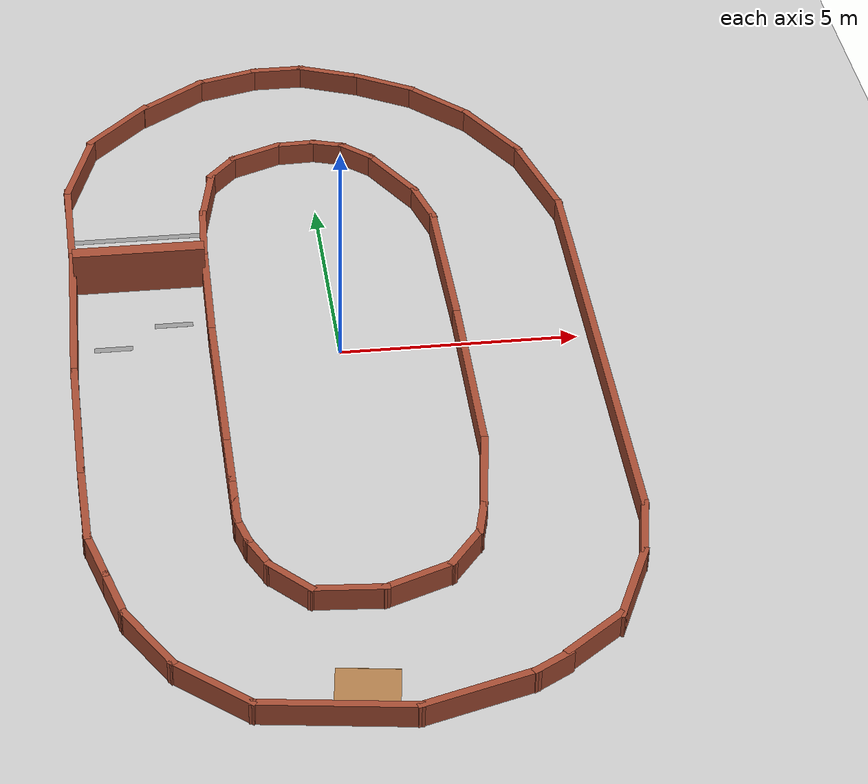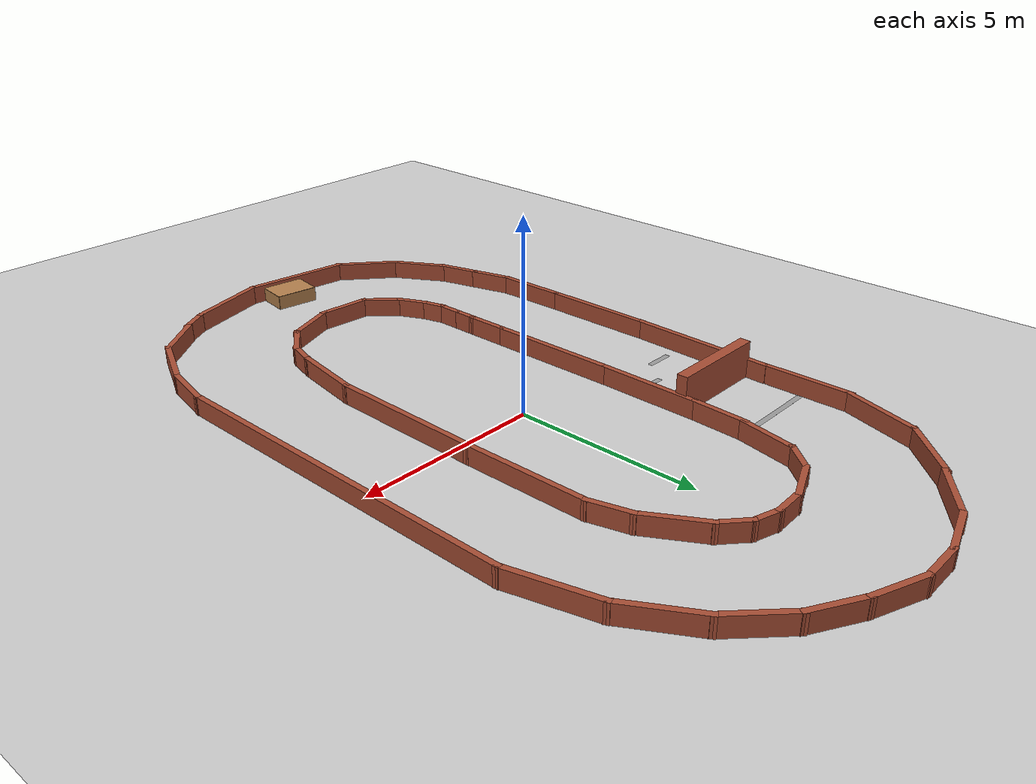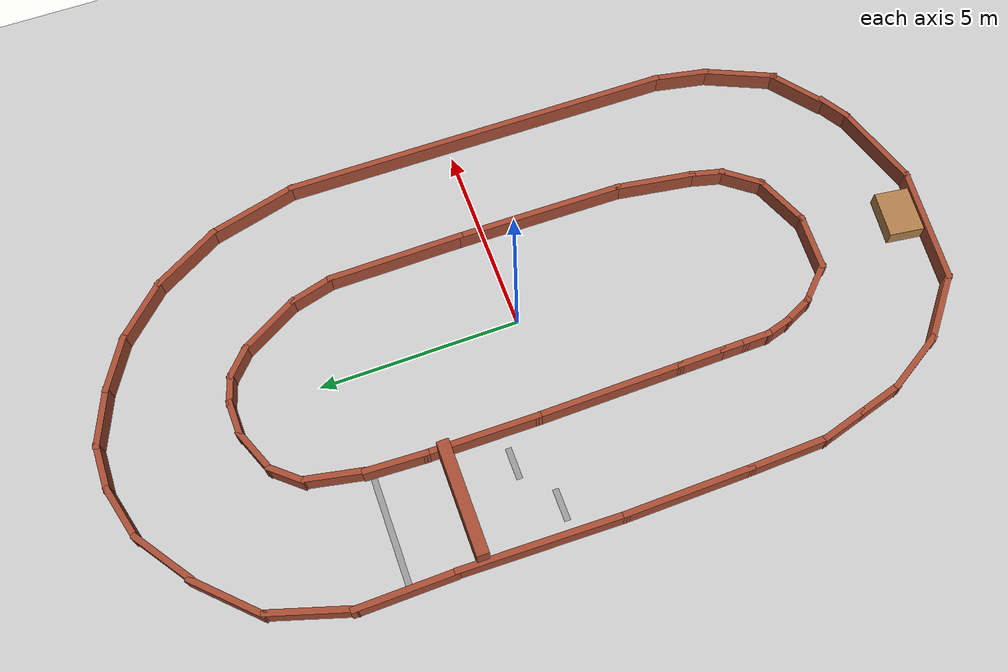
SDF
<sdf version="1.6">
 <world name="default">
  <light name="sun" type="directional">
   <pose>0 0 10 0 -0 0</pose>
   <diffuse>0.8 0.8 0.8 1</diffuse>
   <specular>0.1 0.1 0.1 1</specular>
   <attenuation>
    <range>1000</range>
    <constant>0.9</constant>
    <linear>0.01</linear>
    <quadratic>0.001</quadratic>
   </attenuation>
   <direction>-0.5 0.5 -1</direction>
  </light>
  <model name="ground_plane">
   <static>1</static>
   <link name="link">
    <collision name="collision">
     <geometry><plane><normal>0 0 1</normal><size>30 30</size></plane></geometry>
     <surface><friction><ode><mu>100</mu><mu2>50</mu2></ode></friction></surface>
    </collision>
    <visual name="visual">
     <cast_shadows>0</cast_shadows>
     <geometry><plane><normal>0 0 1</normal><size>30 30</size></plane></geometry>
     <material>
      <script><uri>file://media/materials/scripts/gazebo.material</uri><name>Gazebo/Grey</name></script>
     </material>
    </visual>
   </link>
  </model>
  <gravity>0 0 -9.8</gravity>
  <magnetic_field>6e-06 2.3e-05 -4.2e-05</magnetic_field>
  <atmosphere type="adiabatic"/>
  <physics name="default_physics" default="0" type="ode">
   <max_step_size>0.01</max_step_size>
   <real_time_factor>1</real_time_factor>
   <real_time_update_rate>100</real_time_update_rate>
  </physics>
  <scene><ambient>0.4 0.4 0.4 1</ambient><background>0.7 0.7 0.7 1</background><shadows>1</shadows></scene>
  <spherical_coordinates>
   <surface_model>EARTH_WGS84</surface_model>
   <latitude_deg>0</latitude_deg>
   <longitude_deg>0</longitude_deg>
   <elevation>0</elevation>
   <heading_deg>0</heading_deg>
  </spherical_coordinates>
  <model name="Race_0">
   <pose>-0.195409 -0.189137 0 0 -0 1.84066</pose>
   <link name="Wall_100">
    <collision name="Wall_100_Collision">
     <geometry><box><size>3.75 0.15 0.5</size></box></geometry>
     <pose>0 0 0.25 0 -0 0</pose>
    </collision>
    <visual name="Wall_100_Visual">
     <pose>0 0 0.25 0 -0 0</pose>
     <geometry><box><size>3.75 0.15 0.5</size></box></geometry>
     <material>
      <script><uri>file://media/materials/scripts/gazebo.material</uri><name>Gazebo/Bricks</name></script>
      <ambient>1 1 1 1</ambient>
     </material>
    </visual>
    <pose>-0.488069 2.63903 0 0 -0 2.8797</pose>
   </link>
   <link name="Wall_101">
    <collision name="Wall_101_Collision">
     <geometry><box><size>1.25 0.15 0.5</size></box></geometry>
     <pose>0 0 0.25 0 -0 0</pose>
    </collision>
    <visual name="Wall_101_Visual">
     <pose>0 0 0.25 0 -0 0</pose>
     <geometry><box><size>1.25 0.15 0.5</size></box></geometry>
     <material>
      <script><uri>file://media/materials/scripts/gazebo.material</uri><name>Gazebo/Bricks</name></script>
      <ambient>1 1 1 1</ambient>
     </material>
    </visual>
    <pose>-2.75807 3.24703 0 0 -0 2.88052</pose>
   </link>
   <link name="Wall_102">
    <collision name="Wall_102_Collision">
     <geometry><box><size>0.75 0.15 0.5</size></box></geometry>
     <pose>0 0 0.25 0 -0 0</pose>
    </collision>
    <visual name="Wall_102_Visual">
     <pose>0 0 0.25 0 -0 0</pose>
     <geometry><box><size>0.75 0.15 0.5</size></box></geometry>
     <material>
      <script><uri>file://media/materials/scripts/gazebo.material</uri><name>Gazebo/Bricks</name></script>
      <ambient>1 1 1 1</ambient>
     </material>
    </visual>
    <pose>-3.57907 3.46703 0 0 -0 2.87841</pose>
   </link>
   <link name="Wall_103">
    <collision name="Wall_103_Collision">
     <geometry><box><size>0.75 0.15 0.5</size></box></geometry>
     <pose>0 0 0.25 0 -0 0</pose>
    </collision>
    <visual name="Wall_103_Visual">
     <pose>0 0 0.25 0 -0 0</pose>
     <geometry><box><size>0.75 0.15 0.5</size></box></geometry>
     <material>
      <script><uri>file://media/materials/scripts/gazebo.material</uri><name>Gazebo/Bricks</name></script>
      <ambient>1 1 1 1</ambient>
     </material>
    </visual>
    <pose>-4.15857 3.62253 0 0 -0 2.88045</pose>
   </link>
   <link name="Wall_104">
    <collision name="Wall_104_Collision">
     <geometry><box><size>0.75 0.15 0.5</size></box></geometry>
     <pose>0 0 0.25 0 -0 0</pose>
    </collision>
    <visual name="Wall_104_Visual">
     <pose>0 0 0.25 0 -0 0</pose>
     <geometry><box><size>0.75 0.15 0.5</size></box></geometry>
     <material>
      <script><uri>file://media/materials/scripts/gazebo.material</uri><name>Gazebo/Bricks</name></script>
      <ambient>1 1 1 1</ambient>
     </material>
    </visual>
    <pose>-4.74857 3.70003 0 0 -0 3.14159</pose>
   </link>
   <link name="Wall_105">
    <collision name="Wall_105_Collision">
     <geometry><box><size>0.91106 0.15 0.5</size></box></geometry>
     <pose>0 0 0.25 0 -0 0</pose>
    </collision>
    <visual name="Wall_105_Visual">
     <pose>0 0 0.25 0 -0 0</pose>
     <geometry><box><size>0.91106 0.15 0.5</size></box></geometry>
     <material>
      <script><uri>file://media/materials/scripts/gazebo.material</uri><name>Gazebo/Bricks</name></script>
      <ambient>1 1 1 1</ambient>
     </material>
    </visual>
    <pose>-5.42357 3.63453 0 0 0 -2.96867</pose>
   </link>
   <link name="Wall_38">
    <collision name="Wall_38_Collision">
     <geometry><box><size>1.25 0.15 0.5</size></box></geometry>
     <pose>0 0 0.25 0 -0 0</pose>
    </collision>
    <visual name="Wall_38_Visual">
     <pose>0 0 0.25 0 -0 0</pose>
     <geometry><box><size>1.25 0.15 0.5</size></box></geometry>
     <material>
      <script><uri>file://media/materials/scripts/gazebo.material</uri><name>Gazebo/Bricks</name></script>
      <ambient>1 1 1 1</ambient>
     </material>
    </visual>
    <pose>10.0479 -2.61447 0 0 -0 1.30885</pose>
   </link>
   <link name="Wall_40">
    <collision name="Wall_40_Collision">
     <geometry><box><size>1.5 0.15 0.5</size></box></geometry>
     <pose>0 0 0.25 0 -0 0</pose>
    </collision>
    <visual name="Wall_40_Visual">
     <pose>0 0 0.25 0 -0 0</pose>
     <geometry><box><size>1.5 0.15 0.5</size></box></geometry>
     <material>
      <script><uri>file://media/materials/scripts/gazebo.material</uri><name>Gazebo/Bricks</name></script>
      <ambient>1 1 1 1</ambient>
     </material>
    </visual>
    <pose>10.1904 -1.40797 0 0 -0 1.5708</pose>
   </link>
   <link name="Wall_41">
    <collision name="Wall_41_Collision">
     <geometry><box><size>1.78576 0.15 0.5</size></box></geometry>
     <pose>0 0 0.25 0 -0 0</pose>
    </collision>
    <visual name="Wall_41_Visual">
     <pose>0 0 0.25 0 -0 0</pose>
     <geometry><box><size>1.78576 0.15 0.5</size></box></geometry>
     <material>
      <script><uri>file://media/materials/scripts/gazebo.material</uri><name>Gazebo/Bricks</name></script>
      <ambient>1 1 1 1</ambient>
     </material>
    </visual>
    <pose>9.91575 0.037406 0 0 -0 1.9133</pose>
   </link>
   <link name="Wall_42">
    <collision name="Wall_42_Collision">
     <geometry><box><size>1.99987 0.15 0.5</size></box></geometry>
     <pose>0 0 0.25 0 -0 0</pose>
    </collision>
    <visual name="Wall_42_Visual">
     <pose>0 0 0.25 0 -0 0</pose>
     <geometry><box><size>1.99987 0.15 0.5</size></box></geometry>
     <material>
      <script><uri>file://media/materials/scripts/gazebo.material</uri><name>Gazebo/Bricks</name></script>
      <ambient>1 1 1 1</ambient>
     </material>
    </visual>
    <pose>9.21375 1.60878 0 0 -0 2.09443</pose>
   </link>
   <link name="Wall_43">
    <collision name="Wall_43_Collision">
     <geometry><box><size>2.10349 0.15 0.5</size></box></geometry>
     <pose>0 0 0.25 0 -0 0</pose>
    </collision>
    <visual name="Wall_43_Visual">
     <pose>0 0 0.25 0 -0 0</pose>
     <geometry><box><size>2.10349 0.15 0.5</size></box></geometry>
     <material>
      <script><uri>file://media/materials/scripts/gazebo.material</uri><name>Gazebo/Bricks</name></script>
      <ambient>1 1 1 1</ambient>
     </material>
    </visual>
    <pose>7.89748 2.94264 0 0 -0 2.56455</pose>
   </link>
   <link name="Wall_44">
    <collision name="Wall_44_Collision">
     <geometry><box><size>2.50001 0.15 0.5</size></box></geometry>
     <pose>0 0 0.25 0 -0 0</pose>
    </collision>
    <visual name="Wall_44_Visual">
     <pose>0 0 0.25 0 -0 0</pose>
     <geometry><box><size>2.50001 0.15 0.5</size></box></geometry>
     <material>
      <script><uri>file://media/materials/scripts/gazebo.material</uri><name>Gazebo/Bricks</name></script>
      <ambient>1 1 1 1</ambient>
     </material>
    </visual>
    <pose>5.97907 3.77949 0 0 -0 2.87989</pose>
   </link>
   <link name="Wall_45">
    <collision name="Wall_45_Collision">
     <geometry><box><size>4.09779 0.15 0.5</size></box></geometry>
     <pose>0 0 0.25 0 -0 0</pose>
    </collision>
    <visual name="Wall_45_Visual">
     <pose>0 0 0.25 0 -0 0</pose>
     <geometry><box><size>4.09779 0.15 0.5</size></box></geometry>
     <material>
      <script><uri>file://media/materials/scripts/gazebo.material</uri><name>Gazebo/Bricks</name></script>
      <ambient>1 1 1 1</ambient>
     </material>
    </visual>
    <pose>2.9211 4.66012 0 0 -0 2.84514</pose>
   </link>
   <link name="Wall_46">
    <collision name="Wall_46_Collision">
     <geometry><box><size>3.25 0.15 0.5</size></box></geometry>
     <pose>0 0 0.25 0 -0 0</pose>
    </collision>
    <visual name="Wall_46_Visual">
     <pose>0 0 0.25 0 -0 0</pose>
     <geometry><box><size>3.25 0.15 0.5</size></box></geometry>
     <material>
      <script><uri>file://media/materials/scripts/gazebo.material</uri><name>Gazebo/Bricks</name></script>
      <ambient>1 1 1 1</ambient>
     </material>
    </visual>
    <pose>-0.463627 5.63789 0 0 -0 2.87977</pose>
   </link>
   <link name="Wall_49">
    <collision name="Wall_49_Collision">
     <geometry><box><size>1.91771 0.15 0.5</size></box></geometry>
     <pose>0 0 0.25 0 -0 0</pose>
    </collision>
    <visual name="Wall_49_Visual">
     <pose>0 0 0.25 0 -0 0</pose>
     <geometry><box><size>1.91771 0.15 0.5</size></box></geometry>
     <material>
      <script><uri>file://media/materials/scripts/gazebo.material</uri><name>Gazebo/Bricks</name></script>
      <ambient>1 1 1 1</ambient>
     </material>
    </visual>
    <pose>-8.29807 5.59047 0 0 0 -2.54365</pose>
   </link>
   <link name="Wall_50">
    <collision name="Wall_50_Collision">
     <geometry><box><size>3.12628 0.15 0.5</size></box></geometry>
     <pose>0 0 0.25 0 -0 0</pose>
    </collision>
    <visual name="Wall_50_Visual">
     <pose>0 0 0.25 0 -0 0</pose>
     <geometry><box><size>3.12628 0.15 0.5</size></box></geometry>
     <material>
      <script><uri>file://media/materials/scripts/gazebo.material</uri><name>Gazebo/Bricks</name></script>
      <ambient>1 1 1 1</ambient>
     </material>
    </visual>
    <pose>-9.60827 3.72233 0 0 0 -1.97094</pose>
   </link>
   <link name="Wall_51">
    <collision name="Wall_51_Collision">
     <geometry><box><size>2.4029 0.15 0.5</size></box></geometry>
     <pose>0 0 0.25 0 -0 0</pose>
    </collision>
    <visual name="Wall_51_Visual">
     <pose>0 0 0.25 0 -0 0</pose>
     <geometry><box><size>2.4029 0.15 0.5</size></box></geometry>
     <material>
      <script><uri>file://media/materials/scripts/gazebo.material</uri><name>Gazebo/Bricks</name></script>
      <ambient>1 1 1 1</ambient>
     </material>
    </visual>
    <pose>-10.1788 1.22533 0 0 0 -1.56263</pose>
   </link>
   <link name="Wall_54">
    <collision name="Wall_54_Collision">
     <geometry><box><size>10.1254 0.15 0.5</size></box></geometry>
     <pose>0 0 0.25 0 -0 0</pose>
    </collision>
    <visual name="Wall_54_Visual">
     <pose>0 0 0.25 0 -0 0</pose>
     <geometry><box><size>10.1254 0.15 0.5</size></box></geometry>
     <material>
      <script><uri>file://media/materials/scripts/gazebo.material</uri><name>Gazebo/Bricks</name></script>
      <ambient>1 1 1 1</ambient>
     </material>
    </visual>
    <pose>-2.07039 -5.10617 0 0 0 -0.277255</pose>
   </link>
   <link name="Wall_55">
    <collision name="Wall_55_Collision">
     <geometry><box><size>2.37764 0.15 0.5</size></box></geometry>
     <pose>0 0 0.25 0 -0 0</pose>
    </collision>
    <visual name="Wall_55_Visual">
     <pose>0 0 0.25 0 -0 0</pose>
     <geometry><box><size>2.37764 0.15 0.5</size></box></geometry>
     <material>
      <script><uri>file://media/materials/scripts/gazebo.material</uri><name>Gazebo/Bricks</name></script>
      <ambient>1 1 1 1</ambient>
     </material>
    </visual>
    <pose>3.84061 -6.48667 0 0 0 -0.013731</pose>
   </link>
   <link name="Wall_56">
    <collision name="Wall_56_Collision">
     <geometry><box><size>2 0.15 0.5</size></box></geometry>
     <pose>0 0 0.25 0 -0 0</pose>
    </collision>
    <visual name="Wall_56_Visual">
     <pose>0 0 0.25 0 -0 0</pose>
     <geometry><box><size>2 0.15 0.5</size></box></geometry>
     <material>
      <script><uri>file://media/materials/scripts/gazebo.material</uri><name>Gazebo/Bricks</name></script>
      <ambient>1 1 1 1</ambient>
     </material>
    </visual>
    <pose>5.84793 -6.26247 0 0 -0 0.261891</pose>
   </link>
   <link name="Wall_57">
    <collision name="Wall_57_Collision">
     <geometry><box><size>1.75 0.15 0.5</size></box></geometry>
     <pose>0 0 0.25 0 -0 0</pose>
    </collision>
    <visual name="Wall_57_Visual">
     <pose>0 0 0.25 0 -0 0</pose>
     <geometry><box><size>1.75 0.15 0.5</size></box></geometry>
     <material>
      <script><uri>file://media/materials/scripts/gazebo.material</uri><name>Gazebo/Bricks</name></script>
      <ambient>1 1 1 1</ambient>
     </material>
    </visual>
    <pose>7.43393 -5.62297 0 0 -0 0.523799</pose>
   </link>
   <link name="Wall_58">
    <collision name="Wall_58_Collision">
     <geometry><box><size>1.5 0.15 0.5</size></box></geometry>
     <pose>0 0 0.25 0 -0 0</pose>
    </collision>
    <visual name="Wall_58_Visual">
     <pose>0 0 0.25 0 -0 0</pose>
     <geometry><box><size>1.5 0.15 0.5</size></box></geometry>
     <material>
      <script><uri>file://media/materials/scripts/gazebo.material</uri><name>Gazebo/Bricks</name></script>
      <ambient>1 1 1 1</ambient>
     </material>
    </visual>
    <pose>8.60393 -4.74547 0 0 -0 0.785398</pose>
   </link>
   <link name="Wall_59">
    <collision name="Wall_59_Collision">
     <geometry><box><size>1.54297 0.15 0.5</size></box></geometry>
     <pose>0 0 0.25 0 -0 0</pose>
    </collision>
    <visual name="Wall_59_Visual">
     <pose>0 0 0.25 0 -0 0</pose>
     <geometry><box><size>1.54297 0.15 0.5</size></box></geometry>
     <material>
      <script><uri>file://media/materials/scripts/gazebo.material</uri><name>Gazebo/Bricks</name></script>
      <ambient>1 1 1 1</ambient>
     </material>
    </visual>
    <pose>9.49343 -3.70697 0 0 -0 0.937352</pose>
   </link>
   <link name="Wall_69">
    <collision name="Wall_69_Collision">
     <geometry><box><size>1.18896 0.15 0.5</size></box></geometry>
     <pose>0 0 0.25 0 -0 0</pose>
    </collision>
    <visual name="Wall_69_Visual">
     <pose>0 0 0.25 0 -0 0</pose>
     <geometry><box><size>1.18896 0.15 0.5</size></box></geometry>
     <material>
      <script><uri>file://media/materials/scripts/gazebo.material</uri><name>Gazebo/Bricks</name></script>
      <ambient>1 1 1 1</ambient>
     </material>
    </visual>
    <pose>-6.25457 3.32053 0 0 0 -2.64263</pose>
   </link>
   <link name="Wall_70">
    <collision name="Wall_70_Collision">
     <geometry><box><size>1.53879 0.15 0.5</size></box></geometry>
     <pose>0 0 0.25 0 -0 0</pose>
    </collision>
    <visual name="Wall_70_Visual">
     <pose>0 0 0.25 0 -0 0</pose>
     <geometry><box><size>1.53879 0.15 0.5</size></box></geometry>
     <material>
      <script><uri>file://media/materials/scripts/gazebo.material</uri><name>Gazebo/Bricks</name></script>
      <ambient>1 1 1 1</ambient>
     </material>
    </visual>
    <pose>-6.94507 2.41853 0 0 0 -1.91532</pose>
   </link>
   <link name="Wall_71">
    <collision name="Wall_71_Collision">
     <geometry><box><size>1.55272 0.15 0.5</size></box></geometry>
     <pose>0 0 0.25 0 -0 0</pose>
    </collision>
    <visual name="Wall_71_Visual">
     <pose>0 0 0.25 0 -0 0</pose>
     <geometry><box><size>1.55272 0.15 0.5</size></box></geometry>
     <material>
      <script><uri>file://media/materials/scripts/gazebo.material</uri><name>Gazebo/Bricks</name></script>
      <ambient>1 1 1 1</ambient>
     </material>
    </visual>
    <pose>-7.11157 1.06703 0 0 0 -1.47368</pose>
   </link>
   <link name="Wall_72">
    <collision name="Wall_72_Collision">
     <geometry><box><size>1.18096 0.15 0.5</size></box></geometry>
     <pose>0 0 0.25 0 -0 0</pose>
    </collision>
    <visual name="Wall_72_Visual">
     <pose>0 0 0.25 0 -0 0</pose>
     <geometry><box><size>1.18096 0.15 0.5</size></box></geometry>
     <material>
      <script><uri>file://media/materials/scripts/gazebo.material</uri><name>Gazebo/Bricks</name></script>
      <ambient>1 1 1 1</ambient>
     </material>
    </visual>
    <pose>-6.73807 -0.045969 0 0 0 -0.936222</pose>
   </link>
   <link name="Wall_73">
    <collision name="Wall_73_Collision">
     <geometry><box><size>0.916965 0.15 0.5</size></box></geometry>
     <pose>0 0 0.25 0 -0 0</pose>
    </collision>
    <visual name="Wall_73_Visual">
     <pose>0 0 0.25 0 -0 0</pose>
     <geometry><box><size>0.916965 0.15 0.5</size></box></geometry>
     <material>
      <script><uri>file://media/materials/scripts/gazebo.material</uri><name>Gazebo/Bricks</name></script>
      <ambient>1 1 1 1</ambient>
     </material>
    </visual>
    <pose>-6.10157 -0.654469 0 0 0 -0.529013</pose>
   </link>
   <link name="Wall_74">
    <collision name="Wall_74_Collision">
     <geometry><box><size>2.07957 0.15 0.5</size></box></geometry>
     <pose>0 0 0.25 0 -0 0</pose>
    </collision>
    <visual name="Wall_74_Visual">
     <pose>0 0 0.25 0 -0 0</pose>
     <geometry><box><size>2.07957 0.15 0.5</size></box></geometry>
     <material>
      <script><uri>file://media/materials/scripts/gazebo.material</uri><name>Gazebo/Bricks</name></script>
      <ambient>1 1 1 1</ambient>
     </material>
    </visual>
    <pose>-4.89307 -1.24897 0 0 0 -0.428643</pose>
   </link>
   <link name="Wall_75">
    <collision name="Wall_75_Collision">
     <geometry><box><size>4.37791 0.15 0.5</size></box></geometry>
     <pose>0 0 0.25 0 -0 0</pose>
    </collision>
    <visual name="Wall_75_Visual">
     <pose>0 0 0.25 0 -0 0</pose>
     <geometry><box><size>4.37791 0.15 0.5</size></box></geometry>
     <material>
      <script><uri>file://media/materials/scripts/gazebo.material</uri><name>Gazebo/Bricks</name></script>
      <ambient>1 1 1 1</ambient>
     </material>
    </visual>
    <pose>-1.98513 -2.23828 0 0 0 -0.282024</pose>
   </link>
   <link name="Wall_76">
    <collision name="Wall_76_Collision">
     <geometry><box><size>3.50013 0.15 0.5</size></box></geometry>
     <pose>0 0 0.25 0 -0 0</pose>
    </collision>
    <visual name="Wall_76_Visual">
     <pose>0 0 0.25 0 -0 0</pose>
     <geometry><box><size>3.50013 0.15 0.5</size></box></geometry>
     <material>
      <script><uri>file://media/materials/scripts/gazebo.material</uri><name>Gazebo/Bricks</name></script>
      <ambient>1 1 1 1</ambient>
     </material>
    </visual>
    <pose>1.66208 -3.2601 0 0 0 -0.261775</pose>
   </link>
   <link name="Wall_77">
    <collision name="Wall_77_Collision">
     <geometry><box><size>1.21015 0.15 0.5</size></box></geometry>
     <pose>0 0 0.25 0 -0 0</pose>
    </collision>
    <visual name="Wall_77_Visual">
     <pose>0 0 0.25 0 -0 0</pose>
     <geometry><box><size>1.21015 0.15 0.5</size></box></geometry>
     <material>
      <script><uri>file://media/materials/scripts/gazebo.material</uri><name>Gazebo/Bricks</name></script>
      <ambient>1 1 1 1</ambient>
     </material>
    </visual>
    <pose>3.81137 -3.69728 0 0 0 -0.006955</pose>
   </link>
   <link name="Wall_78">
    <collision name="Wall_78_Collision">
     <geometry><box><size>1.74993 0.15 0.5</size></box></geometry>
     <pose>0 0 0.25 0 -0 0</pose>
    </collision>
    <visual name="Wall_78_Visual">
     <pose>0 0 0.25 0 -0 0</pose>
     <geometry><box><size>1.74993 0.15 0.5</size></box></geometry>
     <material>
      <script><uri>file://media/materials/scripts/gazebo.material</uri><name>Gazebo/Bricks</name></script>
      <ambient>1 1 1 1</ambient>
     </material>
    </visual>
    <pose>5.11443 -3.49397 0 0 -0 0.261649</pose>
   </link>
   <link name="Wall_79">
    <collision name="Wall_79_Collision">
     <geometry><box><size>0.931879 0.15 0.5</size></box></geometry>
     <pose>0 0 0.25 0 -0 0</pose>
    </collision>
    <visual name="Wall_79_Visual">
     <pose>0 0 0.25 0 -0 0</pose>
     <geometry><box><size>0.931879 0.15 0.5</size></box></geometry>
     <material>
      <script><uri>file://media/materials/scripts/gazebo.material</uri><name>Gazebo/Bricks</name></script>
      <ambient>1 1 1 1</ambient>
     </material>
    </visual>
    <pose>6.21557 -3.07447 0 0 -0 0.574675</pose>
   </link>
   <link name="Wall_80">
    <collision name="Wall_80_Collision">
     <geometry><box><size>0.822887 0.15 0.5</size></box></geometry>
     <pose>0 0 0.25 0 -0 0</pose>
    </collision>
    <visual name="Wall_80_Visual">
     <pose>0 0 0.25 0 -0 0</pose>
     <geometry><box><size>0.822887 0.15 0.5</size></box></geometry>
     <material>
      <script><uri>file://media/materials/scripts/gazebo.material</uri><name>Gazebo/Bricks</name></script>
      <ambient>1 1 1 1</ambient>
     </material>
    </visual>
    <pose>6.72172 -2.57647 0 0 -0 1.0133</pose>
   </link>
   <link name="Wall_81">
    <collision name="Wall_81_Collision">
     <geometry><box><size>0.962527 0.15 0.5</size></box></geometry>
     <pose>0 0 0.25 0 -0 0</pose>
    </collision>
    <visual name="Wall_81_Visual">
     <pose>0 0 0.25 0 -0 0</pose>
     <geometry><box><size>0.962527 0.15 0.5</size></box></geometry>
     <material>
      <script><uri>file://media/materials/scripts/gazebo.material</uri><name>Gazebo/Bricks</name></script>
      <ambient>1 1 1 1</ambient>
     </material>
    </visual>
    <pose>6.99472 -1.89597 0 0 -0 1.33477</pose>
   </link>
   <link name="Wall_82">
    <collision name="Wall_82_Collision">
     <geometry><box><size>1.28172 0.15 0.5</size></box></geometry>
     <pose>0 0 0.25 0 -0 0</pose>
    </collision>
    <visual name="Wall_82_Visual">
     <pose>0 0 0.25 0 -0 0</pose>
     <geometry><box><size>1.28172 0.15 0.5</size></box></geometry>
     <material>
      <script><uri>file://media/materials/scripts/gazebo.material</uri><name>Gazebo/Bricks</name></script>
      <ambient>1 1 1 1</ambient>
     </material>
    </visual>
    <pose>7.02372 -0.938969 0 0 -0 1.6877</pose>
   </link>
   <link name="Wall_83">
    <collision name="Wall_83_Collision">
     <geometry><box><size>0.990701 0.15 0.5</size></box></geometry>
     <pose>0 0 0.25 0 -0 0</pose>
    </collision>
    <visual name="Wall_83_Visual">
     <pose>0 0 0.25 0 -0 0</pose>
     <geometry><box><size>0.990701 0.15 0.5</size></box></geometry>
     <material>
      <script><uri>file://media/materials/scripts/gazebo.material</uri><name>Gazebo/Bricks</name></script>
      <ambient>1 1 1 1</ambient>
     </material>
    </visual>
    <pose>6.72554 -0.026558 0 0 -0 2.15597</pose>
   </link>
   <link name="Wall_84">
    <collision name="Wall_84_Collision">
     <geometry><box><size>1.56593 0.15 0.5</size></box></geometry>
     <pose>0 0 0.25 0 -0 0</pose>
    </collision>
    <visual name="Wall_84_Visual">
     <pose>0 0 0.25 0 -0 0</pose>
     <geometry><box><size>1.56593 0.15 0.5</size></box></geometry>
     <material>
      <script><uri>file://media/materials/scripts/gazebo.material</uri><name>Gazebo/Bricks</name></script>
      <ambient>1 1 1 1</ambient>
     </material>
    </visual>
    <pose>5.82768 0.645853 0 0 -0 2.66942</pose>
   </link>
   <link name="Wall_85">
    <collision name="Wall_85_Collision">
     <geometry><box><size>1.58694 0.15 0.5</size></box></geometry>
     <pose>0 0 0.25 0 -0 0</pose>
    </collision>
    <visual name="Wall_85_Visual">
     <pose>0 0 0.25 0 -0 0</pose>
     <geometry><box><size>1.58694 0.15 0.5</size></box></geometry>
     <material>
      <script><uri>file://media/materials/scripts/gazebo.material</uri><name>Gazebo/Bricks</name></script>
      <ambient>1 1 1 1</ambient>
     </material>
    </visual>
    <pose>4.5499 1.19244 0 0 -0 2.82367</pose>
   </link>
   <link name="Wall_86">
    <collision name="Wall_86_Collision">
     <geometry><box><size>2.87336 0.15 0.5</size></box></geometry>
     <pose>0 0 0.25 0 -0 0</pose>
    </collision>
    <visual name="Wall_86_Visual">
     <pose>0 0 0.25 0 -0 0</pose>
     <geometry><box><size>2.87336 0.15 0.5</size></box></geometry>
     <material>
      <script><uri>file://media/materials/scripts/gazebo.material</uri><name>Gazebo/Bricks</name></script>
      <ambient>1 1 1 1</ambient>
     </material>
    </visual>
    <pose>2.55893 1.79503 0 0 -0 2.86037</pose>
   </link>
   <link name="Wall_88">
    <collision name="Wall_88_Collision">
     <geometry><box><size>1.75 0.15 0.5</size></box></geometry>
     <pose>0 0 0.25 0 -0 0</pose>
    </collision>
    <visual name="Wall_88_Visual">
     <pose>0 0 0.25 0 -0 0</pose>
     <geometry><box><size>1.75 0.15 0.5</size></box></geometry>
     <material>
      <script><uri>file://media/materials/scripts/gazebo.material</uri><name>Gazebo/Bricks</name></script>
      <ambient>1 1 1 1</ambient>
     </material>
    </visual>
    <pose>-6.79457 6.29503 0 0 -0 0.261649</pose>
   </link>
   <link name="Wall_89">
    <collision name="Wall_89_Collision">
     <geometry><box><size>1.25 0.15 0.5</size></box></geometry>
     <pose>0 0 0.25 0 -0 0</pose>
    </collision>
    <visual name="Wall_89_Visual">
     <pose>0 0 0.25 0 -0 0</pose>
     <geometry><box><size>1.25 0.15 0.5</size></box></geometry>
     <material>
      <script><uri>file://media/materials/scripts/gazebo.material</uri><name>Gazebo/Bricks</name></script>
      <ambient>1 1 1 1</ambient>
     </material>
    </visual>
    <pose>-5.47157 6.50203 0 0 -0 0</pose>
   </link>
   <link name="Wall_90">
    <collision name="Wall_90_Collision">
     <geometry><box><size>1.25 0.15 0.5</size></box></geometry>
     <pose>0 0 0.25 0 -0 0</pose>
    </collision>
    <visual name="Wall_90_Visual">
     <pose>0 0 0.25 0 -0 0</pose>
     <geometry><box><size>1.25 0.15 0.5</size></box></geometry>
     <material>
      <script><uri>file://media/materials/scripts/gazebo.material</uri><name>Gazebo/Bricks</name></script>
      <ambient>1 1 1 1</ambient>
     </material>
    </visual>
    <pose>-4.37157 6.50203 0 0 -0 0</pose>
   </link>
   <link name="Wall_91">
    <collision name="Wall_91_Collision">
     <geometry><box><size>2.06756 0.15 0.5</size></box></geometry>
     <pose>0 0 0.25 0 -0 0</pose>
    </collision>
    <visual name="Wall_91_Visual">
     <pose>0 0 0.25 0 -0 0</pose>
     <geometry><box><size>2.06756 0.15 0.5</size></box></geometry>
     <material>
      <script><uri>file://media/materials/scripts/gazebo.material</uri><name>Gazebo/Bricks</name></script>
      <ambient>1 1 1 1</ambient>
     </material>
    </visual>
    <pose>-2.89107 6.27053 0 0 0 -0.24384</pose>
   </link>
   <link name="Wall_94">
    <collision name="Wall_94_Collision">
     <geometry><box><size>1.56322 0.15 0.5</size></box></geometry>
     <pose>0 0 0.25 0 -0 0</pose>
    </collision>
    <visual name="Wall_94_Visual">
     <pose>0 0 0.25 0 -0 0</pose>
     <geometry><box><size>1.56322 0.15 0.5</size></box></geometry>
     <material>
      <script><uri>file://media/materials/scripts/gazebo.material</uri><name>Gazebo/Bricks</name></script>
      <ambient>1 1 1 1</ambient>
     </material>
    </visual>
    <pose>-9.68275 -1.30618 0 0 0 -1.19508</pose>
   </link>
   <link name="Wall_95">
    <collision name="Wall_95_Collision">
     <geometry><box><size>1.97386 0.15 0.5</size></box></geometry>
     <pose>0 0 0.25 0 -0 0</pose>
    </collision>
    <visual name="Wall_95_Visual">
     <pose>0 0 0.25 0 -0 0</pose>
     <geometry><box><size>1.97386 0.15 0.5</size></box></geometry>
     <material>
      <script><uri>file://media/materials/scripts/gazebo.material</uri><name>Gazebo/Bricks</name></script>
      <ambient>1 1 1 1</ambient>
     </material>
    </visual>
    <pose>-8.7601 -2.54974 0 0 0 -0.698208</pose>
   </link>
   <link name="Wall_96">
    <collision name="Wall_96_Collision">
     <geometry><box><size>1.48845 0.15 0.5</size></box></geometry>
     <pose>0 0 0.25 0 -0 0</pose>
    </collision>
    <visual name="Wall_96_Visual">
     <pose>0 0 0.25 0 -0 0</pose>
     <geometry><box><size>1.48845 0.15 0.5</size></box></geometry>
     <material>
      <script><uri>file://media/materials/scripts/gazebo.material</uri><name>Gazebo/Bricks</name></script>
      <ambient>1 1 1 1</ambient>
     </material>
    </visual>
    <pose>-7.46457 -3.43847 0 0 0 -0.468993</pose>
   </link>
   <link name="Wall_98">
    <collision name="Wall_98_Collision">
     <geometry><box><size>0.922127 0.15 0.5</size></box></geometry>
     <pose>0 0 0.25 0 -0 0</pose>
    </collision>
    <visual name="Wall_98_Visual">
     <pose>0 0 0.25 0 -0 0</pose>
     <geometry><box><size>0.922127 0.15 0.5</size></box></geometry>
     <material>
      <script><uri>file://media/materials/scripts/gazebo.material</uri><name>Gazebo/Bricks</name></script>
      <ambient>1 1 1 1</ambient>
     </material>
    </visual>
    <pose>-10.0734 -0.274971 0 0 -0 1.82258</pose>
   </link>
   <static>1</static>
  </model>
  <model name="bookshelf">
   <static>1</static>
   <link name="link">
    <inertial><mass>1</mass></inertial>
    <collision name="back">
     <pose>0 0.005 0.6 0 -0 0</pose>
     <geometry><box><size>0.9 0.01 1.2</size></box></geometry>
    </collision>
    <visual name="visual1">
     <pose>0 0.005 0.6 0 -0 0</pose>
     <geometry><box><size>0.9 0.01 1.2</size></box></geometry>
     <material>
      <script><uri>file://media/materials/scripts/gazebo.material</uri><name>Gazebo/Wood</name></script>
     </material>
    </visual>
    <collision name="left_side">
     <pose>0.45 -0.195 0.6 0 -0 0</pose>
     <geometry><box><size>0.02 0.4 1.2</size></box></geometry>
    </collision>
    <visual name="visual2">
     <pose>0.45 -0.195 0.6 0 -0 0</pose>
     <geometry><box><size>0.02 0.4 1.2</size></box></geometry>
     <material>
      <script><uri>file://media/materials/scripts/gazebo.material</uri><name>Gazebo/Wood</name></script>
     </material>
    </visual>
    <collision name="right_side">
     <pose>-0.45 -0.195 0.6 0 -0 0</pose>
     <geometry><box><size>0.02 0.4 1.2</size></box></geometry>
    </collision>
    <visual name="visual3">
     <pose>-0.45 -0.195 0.6 0 -0 0</pose>
     <geometry><box><size>0.02 0.4 1.2</size></box></geometry>
     <material>
      <script><uri>file://media/materials/scripts/gazebo.material</uri><name>Gazebo/Wood</name></script>
     </material>
    </visual>
    <collision name="bottom">
     <pose>0 -0.195 0.03 0 -0 0</pose>
     <geometry><box><size>0.88 0.4 0.06</size></box></geometry>
    </collision>
    <visual name="visual4">
     <pose>0 -0.195 0.03 0 -0 0</pose>
     <geometry><box><size>0.88 0.4 0.06</size></box></geometry>
     <material>
      <script><uri>file://media/materials/scripts/gazebo.material</uri><name>Gazebo/Wood</name></script>
     </material>
    </visual>
    <collision name="top">
     <pose>0 -0.195 1.19 0 -0 0</pose>
     <geometry><box><size>0.88 0.4 0.02</size></box></geometry>
    </collision>
    <visual name="visual5">
     <pose>0 -0.195 1.19 0 -0 0</pose>
     <geometry><box><size>0.88 0.4 0.02</size></box></geometry>
     <material>
      <script><uri>file://media/materials/scripts/gazebo.material</uri><name>Gazebo/Wood</name></script>
     </material>
    </visual>
    <collision name="low_shelf">
     <pose>0 -0.195 0.43 0 -0 0</pose>
     <geometry><box><size>0.88 0.4 0.02</size></box></geometry>
    </collision>
    <visual name="visual6">
     <pose>0 -0.195 0.43 0 -0 0</pose>
     <geometry><box><size>0.88 0.4 0.02</size></box></geometry>
     <material>
      <script><uri>file://media/materials/scripts/gazebo.material</uri><name>Gazebo/Wood</name></script>
     </material>
    </visual>
    <collision name="high_shelf">
     <pose>0 -0.195 0.8 0 -0 0</pose>
     <geometry><box><size>0.88 0.4 0.02</size></box></geometry>
    </collision>
    <visual name="visual7">
     <pose>0 -0.195 0.8 0 -0 0</pose>
     <geometry><box><size>0.88 0.4 0.02</size></box></geometry>
     <material>
      <script><uri>file://media/materials/scripts/gazebo.material</uri><name>Gazebo/Wood</name></script>
     </material>
    </visual>
   </link>
   <pose>-1.21413 -9.92596 0.393461 1.56868 0.000364 1.43332</pose>
  </model>
  <model name="Untitled">
   <pose>-3.95995 4.45939 0 0 -0 0</pose>
   <link name="Wall_1">
    <collision name="Wall_1_Collision">
     <geometry><box><size>2.8 0.15 0.001</size></box></geometry>
     <pose>0 0 0.0005 0 -0 0</pose>
    </collision>
    <visual name="Wall_1_Visual">
     <pose>0 0 0.0005 0 -0 0</pose>
     <geometry><box><size>2.8 0.15 0.001</size></box></geometry>
     <material>
      <script><uri>file://media/materials/scripts/gazebo.material</uri><name>Gazebo/Grey</name></script>
      <ambient>1 1 1 1</ambient>
     </material>
    </visual>
    <pose>0 0 0 0 -0 3.14159</pose>
   </link>
   <static>1</static>
  </model>
  <model name="largada">
   <link name="Wall_1">
    <pose>0 0 0 0 -0 3.14159</pose>
    <inertial>
     <mass>1</mass>
     <inertia><ixx>1</ixx><ixy>0</ixy><ixz>0</ixz><iyy>1</iyy><iyz>0</iyz><izz>1</izz></inertia>
    </inertial>
    <visual name="Wall_1_Visual">
     <pose>0 0 0.0005 0 -0 0</pose>
     <geometry><box><size>0.8 0.15 0.001</size></box></geometry>
     <material>
      <script><uri>file://media/materials/scripts/gazebo.material</uri><name>Gazebo/Grey</name></script>
      <ambient>1 1 1 1</ambient>
      <diffuse>0.7 0.7 0.7 1</diffuse>
      <specular>0.01 0.01 0.01 1</specular>
      <emissive>0 0 0 1</emissive>
      <shader type="vertex"><normal_map>__default__</normal_map></shader>
     </material>
    </visual>
    <collision name="Wall_1_Collision">
     <pose>0 0 0.0005 0 -0 0</pose>
     <geometry><box><size>2.8 0.15 0.001</size></box></geometry>
     <surface>
      <friction>
       <ode><mu>1</mu><mu2>1</mu2><fdir1>0 0 0</fdir1><slip1>0</slip1><slip2>0</slip2></ode>
       <torsional>
        <coefficient>1</coefficient>
        <patch_radius>0</patch_radius>
        <surface_radius>0</surface_radius>
        <use_patch_radius>1</use_patch_radius>
        <ode><slip>0</slip></ode>
       </torsional>
      </friction>
      <bounce><restitution_coefficient>0</restitution_coefficient><threshold>1e+06</threshold></bounce>
      <contact>
       <collide_without_contact>0</collide_without_contact>
       <collide_without_contact_bitmask>1</collide_without_contact_bitmask>
       <collide_bitmask>1</collide_bitmask>
       <ode>
        <soft_cfm>0</soft_cfm>
        <soft_erp>0.2</soft_erp>
        <kp>1e+13</kp>
        <kd>1</kd>
        <max_vel>0.01</max_vel>
        <min_depth>0</min_depth>
       </ode>
       <bullet>
        <split_impulse>1</split_impulse>
        <split_impulse_penetration_threshold>-0.01</split_impulse_penetration_threshold>
        <soft_cfm>0</soft_cfm>
        <soft_erp>0.2</soft_erp>
        <kp>1e+13</kp>
        <kd>1</kd>
       </bullet>
      </contact>
     </surface>
    </collision>
   </link>
   <static>1</static>
   <pose>-3.37401 1.31186 0 0 -0 0</pose>
  </model>
  <model name="largada_clone">
   <link name="Wall_1">
    <pose>0 0 0 0 -0 3.14159</pose>
    <inertial>
     <mass>1</mass>
     <inertia><ixx>1</ixx><ixy>0</ixy><ixz>0</ixz><iyy>1</iyy><iyz>0</iyz><izz>1</izz></inertia>
    </inertial>
    <visual name="Wall_1_Visual">
     <pose>0 0 0.0005 0 -0 0</pose>
     <geometry><box><size>0.8 0.15 0.001</size></box></geometry>
     <material>
      <script><uri>file://media/materials/scripts/gazebo.material</uri><name>Gazebo/Grey</name></script>
      <ambient>1 1 1 1</ambient>
      <diffuse>0.7 0.7 0.7 1</diffuse>
      <specular>0.01 0.01 0.01 1</specular>
      <emissive>0 0 0 1</emissive>
      <shader type="vertex"><normal_map>__default__</normal_map></shader>
     </material>
    </visual>
    <collision name="Wall_1_Collision">
     <pose>0 0 0.0005 0 -0 0</pose>
     <geometry><box><size>2.8 0.15 0.001</size></box></geometry>
     <surface>
      <friction>
       <ode><mu>1</mu><mu2>1</mu2><fdir1>0 0 0</fdir1><slip1>0</slip1><slip2>0</slip2></ode>
       <torsional>
        <coefficient>1</coefficient>
        <patch_radius>0</patch_radius>
        <surface_radius>0</surface_radius>
        <use_patch_radius>1</use_patch_radius>
        <ode><slip>0</slip></ode>
       </torsional>
      </friction>
      <bounce><restitution_coefficient>0</restitution_coefficient><threshold>1e+06</threshold></bounce>
      <contact>
       <collide_without_contact>0</collide_without_contact>
       <collide_without_contact_bitmask>1</collide_without_contact_bitmask>
       <collide_bitmask>1</collide_bitmask>
       <ode>
        <soft_cfm>0</soft_cfm>
        <soft_erp>0.2</soft_erp>
        <kp>1e+13</kp>
        <kd>1</kd>
        <max_vel>0.01</max_vel>
        <min_depth>0</min_depth>
       </ode>
       <bullet>
        <split_impulse>1</split_impulse>
        <split_impulse_penetration_threshold>-0.01</split_impulse_penetration_threshold>
        <soft_cfm>0</soft_cfm>
        <soft_erp>0.2</soft_erp>
        <kp>1e+13</kp>
        <kd>1</kd>
       </bullet>
      </contact>
     </surface>
    </collision>
   </link>
   <static>1</static>
   <pose>-4.68 0.629334 0 0 -0 0</pose>
  </model>
  <model name="parede">
   <pose>-4.01065 2.738 0 0 -0 0</pose>
   <link name="Wall_2">
    <collision name="Wall_2_Collision">
     <geometry><box><size>2.8 0.3 1</size></box></geometry>
     <pose>0 0 0.5 0 -0 0</pose>
    </collision>
    <visual name="Wall_2_Visual">
     <pose>0 0 0.5 0 -0 0</pose>
     <geometry><box><size>2.8 0.3 1</size></box></geometry>
     <material>
      <script><uri>file://media/materials/scripts/gazebo.material</uri><name>Gazebo/Bricks</name></script>
      <ambient>1 1 1 1</ambient>
     </material>
    </visual>
    <pose>0 0 0 0 -0 3.14159</pose>
   </link>
   <static>1</static>
  </model>
 </world>
</sdf>
